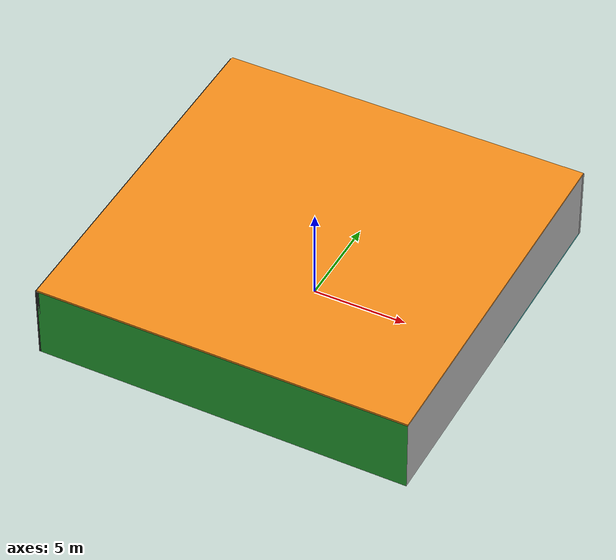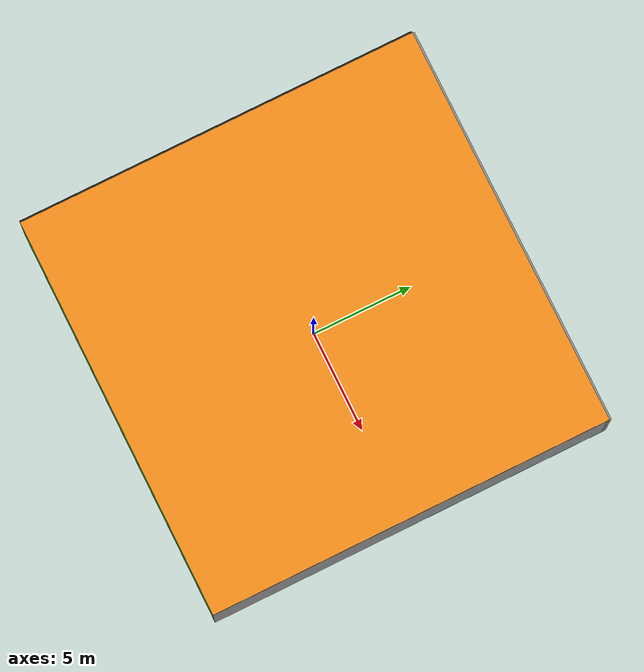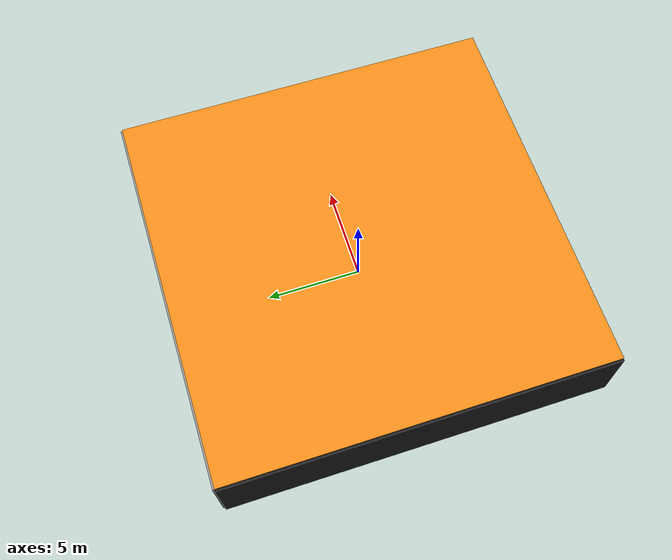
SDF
<sdf version="1.4">
 <world name="default">
  <physics type="ode">
   <max_step_size>0.001</max_step_size>
   <real_time_factor>1</real_time_factor>
   <real_time_update_rate>1000</real_time_update_rate>
   <gravity>0 0 -9.8</gravity>
  </physics>
  <scene><ambient>0.4 0.4 0.4 1</ambient><background>0.7 0.7 0.7 1</background><shadows>1</shadows></scene>
  <model name="Surrounding">
   <static>1</static>
   <link name="Ceiling">
    <collision name="Ceiling_Collision"><geometry><box><size>20 20 0.1</size></box></geometry></collision>
    <visual name="Ceiling_Visual">
     <geometry><box><size>20 20 0.1</size></box></geometry>
     <material>
      <script><uri>file://media/materials/scripts/gazebo.material</uri><name>Gazebo/Orange</name></script>
     </material>
    </visual>
    <pose>0 0 4.05 0 0 0</pose>
   </link>
   <link name="Wall_South">
    <collision name="Wall_South_Collision">
     <geometry><box><size>20 0 4</size></box></geometry>
     <pose>0 0 2 0 -0 0</pose>
    </collision>
    <visual name="Wall_South_Visual">
     <pose>0 0 2 0 -0 0</pose>
     <geometry><box><size>20 0 4</size></box></geometry>
     <material>
      <script><uri>file://media/materials/scripts/gazebo.material</uri><name>Gazebo/GreenGlow</name></script>
     </material>
    </visual>
    <velocity_decay><linear>0</linear><angular>0</angular></velocity_decay>
    <pose>0 -10 0 0 -0 0</pose>
   </link>
   <link name="Wall_East">
    <collision name="Wall_21_Collision">
     <geometry><box><size>20 0 4</size></box></geometry>
     <pose>0 0 2 0 -0 0</pose>
    </collision>
    <visual name="Wall_21_Visual">
     <pose>0 0 2 0 -0 0</pose>
     <geometry><box><size>20 0 4</size></box></geometry>
     <material>
      <script><uri>file://media/materials/scripts/gazebo.material</uri><name>Gazebo/PioneerBody</name></script>
     </material>
    </visual>
    <velocity_decay><linear>0</linear><angular>0</angular></velocity_decay>
    <pose>10 0 0 0 -0 1.5708</pose>
   </link>
   <link name="Wall_North">
    <collision name="Wall_22_Collision">
     <geometry><box><size>20 0.2 4</size></box></geometry>
     <pose>0 0 2 0 -0 0</pose>
    </collision>
    <visual name="Wall_22_Visual">
     <pose>0 0 2 0 -0 0</pose>
     <geometry><box><size>20 0.2 4</size></box></geometry>
     <material>
      <script><uri>file://media/materials/scripts/gazebo.material</uri><name>Gazebo/GreyGradientSky</name></script>
     </material>
    </visual>
    <velocity_decay><linear>0</linear><angular>0</angular></velocity_decay>
    <pose>0 10 0 0 -0 0</pose>
   </link>
   <link name="Wall_West">
    <collision name="Wall_23_Collision">
     <geometry><box><size>20 0.2 4</size></box></geometry>
     <pose>0 0 2 0 -0 0</pose>
    </collision>
    <visual name="Wall_23_Visual">
     <pose>0 0 2 0 -0 0</pose>
     <geometry><box><size>20 0.2 4</size></box></geometry>
     <material>
      <script><uri>file://media/materials/scripts/gazebo.material</uri><name>Gazebo/Black</name></script>
     </material>
    </visual>
    <velocity_decay><linear>0</linear><angular>0</angular></velocity_decay>
    <pose>-10 0 0 0 0 -1.5708</pose>
   </link>
   <link name="Ground_link">
    <collision name="collision">
     <pose>0 0 .05 0 -0 0</pose>
     <geometry><box><size>20 20 0.1</size></box></geometry>
    </collision>
    <visual name="visual">
     <pose>0 0 .05 0 -0 0</pose>
     <geometry><box><size>20 20 0.1</size></box></geometry>
     <material>
      <script>
       <uri>file://media/materials/scripts/gazebo.material</uri>
       <name>Gazebo/TurquoiseGlowOutline</name>
      </script>
     </material>
    </visual>
   </link>
   <static>1</static>
  </model>
  <spherical_coordinates>
   <surface_model>EARTH_WGS84</surface_model>
   <latitude_deg>0</latitude_deg>
   <longitude_deg>0</longitude_deg>
   <elevation>0</elevation>
   <heading_deg>0</heading_deg>
  </spherical_coordinates>
  <light name="lightball_0" type="diffuse">
   <diffuse>0.8 0.8 0.8 1</diffuse>
   <specular>0.2 0.2 0.2 1</specular>
   <attenuation>
    <range>100</range>
    <constant>0.7</constant>
    <linear>0.01</linear>
    <quadratic>0.001</quadratic>
   </attenuation>
   <direction>-0.5 0.1 -0.9</direction>
   <pose>-1.00741606533 5.18474525209 3.49041534207 0 0 0</pose>
  </light>
  <light name="lightball_1" type="diffuse">
   <diffuse>0.8 0.8 0.8 1</diffuse>
   <specular>0.2 0.2 0.2 1</specular>
   <attenuation>
    <range>100</range>
    <constant>0.7</constant>
    <linear>0.01</linear>
    <quadratic>0.001</quadratic>
   </attenuation>
   <direction>-0.5 0.1 -0.9</direction>
   <pose>8.16308385784 -4.40737622982 3.17565872582 0 0 0</pose>
  </light>
  <light name="lightball_2" type="diffuse">
   <diffuse>0.8 0.8 0.8 1</diffuse>
   <specular>0.2 0.2 0.2 1</specular>
   <attenuation>
    <range>100</range>
    <constant>0.7</constant>
    <linear>0.01</linear>
    <quadratic>0.001</quadratic>
   </attenuation>
   <direction>-0.5 0.1 -0.9</direction>
   <pose>-2.2376914749 0.946597689752 1.77564161404 0 0 0</pose>
  </light>
  <light name="lightball_3" type="diffuse">
   <diffuse>0.8 0.8 0.8 1</diffuse>
   <specular>0.2 0.2 0.2 1</specular>
   <attenuation>
    <range>100</range>
    <constant>0.7</constant>
    <linear>0.01</linear>
    <quadratic>0.001</quadratic>
   </attenuation>
   <direction>-0.5 0.1 -0.9</direction>
   <pose>-2.9339875844 -9.36864908743 3.48757884333 0 0 0</pose>
  </light>
  <light name="lightball_4" type="diffuse">
   <diffuse>0.8 0.8 0.8 1</diffuse>
   <specular>0.2 0.2 0.2 1</specular>
   <attenuation>
    <range>100</range>
    <constant>0.7</constant>
    <linear>0.01</linear>
    <quadratic>0.001</quadratic>
   </attenuation>
   <direction>-0.5 0.1 -0.9</direction>
   <pose>9.2686251809 -6.6737588446 0.675087723078 0 0 0</pose>
  </light>
  <light name="lightball_5" type="diffuse">
   <diffuse>0.8 0.8 0.8 1</diffuse>
   <specular>0.2 0.2 0.2 1</specular>
   <attenuation>
    <range>100</range>
    <constant>0.7</constant>
    <linear>0.01</linear>
    <quadratic>0.001</quadratic>
   </attenuation>
   <direction>-0.5 0.1 -0.9</direction>
   <pose>4.56453282606 4.30205837304 3.13367832932 0 0 0</pose>
  </light>
  <light name="lightball_6" type="diffuse">
   <diffuse>0.8 0.8 0.8 1</diffuse>
   <specular>0.2 0.2 0.2 1</specular>
   <attenuation>
    <range>100</range>
    <constant>0.7</constant>
    <linear>0.01</linear>
    <quadratic>0.001</quadratic>
   </attenuation>
   <direction>-0.5 0.1 -0.9</direction>
   <pose>5.27170596018 -6.05830185115 0.698050579194 0 0 0</pose>
  </light>
  <light name="lightball_7" type="diffuse">
   <diffuse>0.8 0.8 0.8 1</diffuse>
   <specular>0.2 0.2 0.2 1</specular>
   <attenuation>
    <range>100</range>
    <constant>0.7</constant>
    <linear>0.01</linear>
    <quadratic>0.001</quadratic>
   </attenuation>
   <direction>-0.5 0.1 -0.9</direction>
   <pose>0.99066319416 -7.76858733035 0.981786805263 0 0 0</pose>
  </light>
  <light name="lightball_8" type="diffuse">
   <diffuse>0.8 0.8 0.8 1</diffuse>
   <specular>0.2 0.2 0.2 1</specular>
   <attenuation>
    <range>100</range>
    <constant>0.7</constant>
    <linear>0.01</linear>
    <quadratic>0.001</quadratic>
   </attenuation>
   <direction>-0.5 0.1 -0.9</direction>
   <pose>6.32929049603 2.32781257744 2.33963943557 0 0 0</pose>
  </light>
  <light name="lightball_9" type="diffuse">
   <diffuse>0.8 0.8 0.8 1</diffuse>
   <specular>0.2 0.2 0.2 1</specular>
   <attenuation>
    <range>100</range>
    <constant>0.7</constant>
    <linear>0.01</linear>
    <quadratic>0.001</quadratic>
   </attenuation>
   <direction>-0.5 0.1 -0.9</direction>
   <pose>-2.76412298676 8.84156474503 1.07842576994 0 0 0</pose>
  </light>
  <light name="lightball_10" type="diffuse">
   <diffuse>0.8 0.8 0.8 1</diffuse>
   <specular>0.2 0.2 0.2 1</specular>
   <attenuation>
    <range>100</range>
    <constant>0.7</constant>
    <linear>0.01</linear>
    <quadratic>0.001</quadratic>
   </attenuation>
   <direction>-0.5 0.1 -0.9</direction>
   <pose>5.09347380504 -8.81885975813 2.04049119015 0 0 0</pose>
  </light>
  <light name="lightball_11" type="diffuse">
   <diffuse>0.8 0.8 0.8 1</diffuse>
   <specular>0.2 0.2 0.2 1</specular>
   <attenuation>
    <range>100</range>
    <constant>0.7</constant>
    <linear>0.01</linear>
    <quadratic>0.001</quadratic>
   </attenuation>
   <direction>-0.5 0.1 -0.9</direction>
   <pose>-3.24431595981 7.68432797527 1.8189157538 0 0 0</pose>
  </light>
  <include>
   <uri>model://construction_cone</uri>
   <pose>-7.03721412737 -7.94378940949 0 0 0 0.205949351387</pose>
  </include>
  <include>
   <uri>model://robocup_3Dsim_goal</uri>
   <pose>-7.9751162149 -4.56173906963 0 0 0 0.960400611526</pose>
  </include>
  <include>
   <uri>model://construction_cone</uri>
   <pose>-4.92777626241 -7.13028041783 0 0 0 1.78569355759</pose>
  </include>
  <include>
   <uri>model://construction_cone</uri>
   <pose>-4.97054845732 1.4203042667 0 0 0 0.890403810821</pose>
  </include>
  <include>
   <uri>model://robocup_3Dsim_goal</uri>
   <pose>0.716417881809 -3.97441955098 0 0 0 1.6189169975</pose>
  </include>
  <include>
   <uri>model://construction_cone</uri>
   <pose>7.35178664635 7.19621375052 0 0 0 1.56805898908</pose>
  </include>
 </world>
</sdf>

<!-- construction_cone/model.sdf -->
<sdf version="1.5">
  <model name="Construction Cone">
    <link name="link">
      <collision name="collision">
        <geometry>
          <mesh>
            <scale>10 10 10</scale>
            <uri>file://isr-testbed/construction_cone/meshes/construction_cone.dae</uri>
          </mesh>
        </geometry>
      </collision>
      <visual name="visual">
        <geometry>
          <mesh>
            <scale>10 10 10</scale>
            <uri>file://isr-testbed/construction_cone/meshes/construction_cone.dae</uri>
          </mesh>
        </geometry>
      </visual>
    </link>
  </model>
</sdf>

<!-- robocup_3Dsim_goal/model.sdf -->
<sdf version="1.5">
  <model name="robocup_3d_goal">
    <static>true</static>
    <link name="left_post">
      <pose>0 1.05 0.45 0 0 0</pose>
      <collision name="collision">
        <geometry>
          <cylinder>
            <radius>0.05</radius>
            <length>0.9</length>
          </cylinder>
        </geometry>
      </collision>
      <visual name="visual">
        <geometry>
          <cylinder>
            <radius>0.05</radius>
            <length>0.9</length>
          </cylinder>
        </geometry>
        <material>
          <script>
            <uri>file://media/materials/scripts/gazebo.material</uri>
            <name>Gazebo/ZincYellow</name>
          </script>
        </material>
      </visual>
    </link>
    <link name="left_support_horiz_lower">
      <pose>0.30 1.05 0.01 0 0 0</pose>
      <collision name="collision">
        <geometry>
          <box>
            <size>0.50 0.02 0.02</size>
          </box>
        </geometry>
      </collision>
      <visual name="visual">
        <geometry>
          <box>
            <size>0.50 0.02 0.02</size>
          </box>
        </geometry>
        <material>
          <script>
            <uri>file://media/materials/scripts/gazebo.material</uri>
            <name>Gazebo/White</name>
          </script>
        </material>
      </visual>
    </link>
    <link name="left_support_horiz_upper">
      <pose>0.30 1.05 0.79 0 0 0</pose>
      <collision name="collision">
        <geometry>
          <box>
            <size>0.50 0.02 0.02</size>
          </box>
        </geometry>
      </collision>
      <visual name="visual">
        <geometry>
          <box>
            <size>0.50 0.02 0.02</size>
          </box>
        </geometry>
        <material>
          <script>
            <uri>file://media/materials/scripts/gazebo.material</uri>
            <name>Gazebo/White</name>
          </script>
        </material>
      </visual>
    </link>
    <link name="left_support_vertical">
      <pose>0.56 1.05 0.4 0 1.5708 0</pose>
      <collision name="collision">
        <geometry>
          <box>
            <size>0.80 0.02 0.02</size>
          </box>
        </geometry>
      </collision>
      <visual name="visual">
        <geometry>
          <box>
            <size>0.80 0.02 0.02</size>
          </box>
        </geometry>
        <material>
          <script>
            <uri>file://media/materials/scripts/gazebo.material</uri>
            <name>Gazebo/White</name>
          </script>
        </material>
      </visual>
    </link>
    <link name="right_support_horiz_lower">
      <pose>0.30 -1.05 0.01 0 0 0</pose>
      <collision name="collision">
        <geometry>
          <box>
            <size>0.50 0.02 0.02</size>
          </box>
        </geometry>
      </collision>
      <visual name="visual">
        <geometry>
          <box>
            <size>0.50 0.02 0.02</size>
          </box>
        </geometry>
        <material>
          <script>
            <uri>file://media/materials/scripts/gazebo.material</uri>
            <name>Gazebo/White</name>
          </script>
        </material>
      </visual>
    </link>
    <link name="right_support_horiz_upper">
      <pose>0.30 -1.05 0.79 0 0 0</pose>
      <collision name="collision">
        <geometry>
          <box>
            <size>0.50 0.02 0.02</size>
          </box>
        </geometry>
      </collision>
      <visual name="visual">
        <geometry>
          <box>
            <size>0.50 0.02 0.02</size>
          </box>
        </geometry>
        <material>
          <script>
            <uri>file://media/materials/scripts/gazebo.material</uri>
            <name>Gazebo/White</name>
          </script>
        </material>
      </visual>
    </link>
    <link name="right_support_vertical">
      <pose>0.56 -1.05 0.4 0 1.5708 0</pose>
      <collision name="collision">
        <geometry>
          <box>
            <size>0.80 0.02 0.02</size>
          </box>
        </geometry>
      </collision>
      <visual name="visual">
        <geometry>
          <box>
            <size>0.80 0.02 0.02</size>
          </box>
        </geometry>
        <material>
          <script>
            <uri>file://media/materials/scripts/gazebo.material</uri>
            <name>Gazebo/White</name>
          </script>
        </material>
      </visual>
    </link>
    <link name="center_support_horiz_lower">
      <pose>0.56 0 0.01 0 1.5708 0</pose>
      <collision name="collision">
        <geometry>
          <box>
            <size>0.02 2.08 0.02</size>
          </box>
        </geometry>
      </collision>
      <visual name="visual">
        <geometry>
          <box>
            <size>0.02 2.08 0.02</size>
          </box>
        </geometry>
        <material>
          <script>
            <uri>file://media/materials/scripts/gazebo.material</uri>
            <name>Gazebo/White</name>
          </script>
        </material>
      </visual>
    </link>
    <link name="center_support_horiz_upper">
      <pose>0.56 0 0.79 0 1.5708 0</pose>
      <collision name="collision">
        <geometry>
          <box>
            <size>0.02 2.08 0.02</size>
          </box>
        </geometry>
      </collision>
      <visual name="visual">
        <geometry>
          <box>
            <size>0.02 2.08 0.02</size>
          </box>
        </geometry>
        <material>
          <script>
            <uri>file://media/materials/scripts/gazebo.material</uri>
            <name>Gazebo/White</name>
          </script>
        </material>
      </visual>
    </link>
    <link name="right_post">
      <pose>0 -1.05 0.45 0 0 0</pose>
      <collision name="collision">
        <geometry>
          <cylinder>
            <radius>0.05</radius>
            <length>0.9</length>
          </cylinder>
        </geometry>
      </collision>
      <visual name="visual">
        <geometry>
          <cylinder>
            <radius>0.05</radius>
            <length>0.9</length>
          </cylinder>
        </geometry>
        <material>
          <script>
            <uri>file://media/materials/scripts/gazebo.material</uri>
            <name>Gazebo/ZincYellow</name>
          </script>
        </material>
      </visual>
    </link>
    <link name="crossbar">
      <pose>0 0 0.85 1.57 1.57 0</pose>
      <collision name="collision">
        <geometry>
          <cylinder>
            <radius>0.05</radius>
            <length>2.0</length>
          </cylinder>
        </geometry>
      </collision>
      <visual name="visual">
        <geometry>
          <cylinder>
            <radius>0.05</radius>
            <length>2.0</length>
          </cylinder>
        </geometry>
        <material>
          <script>
            <uri>file://media/materials/scripts/gazebo.material</uri>
            <name>Gazebo/ZincYellow</name>
          </script>
        </material>
      </visual>
    </link>
    <link name="center_net">
      <pose>0.56 0 0.40 0 0 0</pose>
      <collision name="collision">
        <geometry>
          <box>
            <size>0.01 2.1 0.80</size>
          </box>
        </geometry>
      </collision>
      <visual name="visual">
        <geometry>
          <box>
            <size>0.01 2.1 0.80</size>
          </box>
        </geometry>
        <material>
          <script>
            <uri>model://../model_source/models/robocup09_spl_field/materials/scripts/</uri>
            <uri>model://../model_source/models/robocup09_spl_field/materials/textures/</uri>
            <name>RoboCup/Net</name>
          </script>
        </material>
      </visual>
    </link>
    <link name="left_net">
      <pose>0.30 1.05 0.40 0 0 0</pose>
      <collision name="collision">
        <geometry>
          <box>
            <size>0.50 0.01 0.76</size>
          </box>
        </geometry>
      </collision>
      <visual name="visual">
        <geometry>
          <box>
            <size>0.50 0.01 0.76</size>
          </box>
        </geometry>
        <material>
          <script>
            <uri>model://../model_source/models/robocup09_spl_field/materials/scripts/</uri>
            <uri>model://../model_source/models/robocup09_spl_field/materials/textures/</uri>
            <name>RoboCup/Net</name>
          </script>
        </material>
      </visual>
    </link>
    <link name="right_net">
      <pose>0.30 -1.05 0.40 0 0 0</pose>
      <collision name="collision">
        <geometry>
          <box>
            <size>0.50 0.01 0.76</size>
          </box>
        </geometry>
      </collision>
      <visual name="visual">
        <geometry>
          <box>
            <size>0.50 0.01 0.76</size>
          </box>
        </geometry>
        <material>
          <script>
            <uri>model://../model_source/models/robocup09_spl_field/materials/scripts/</uri>
            <uri>model://../model_source/models/robocup09_spl_field/materials/textures/</uri>
            <name>RoboCup/Net</name>
          </script>
        </material>
      </visual>
    </link>
  </model>
</sdf>
